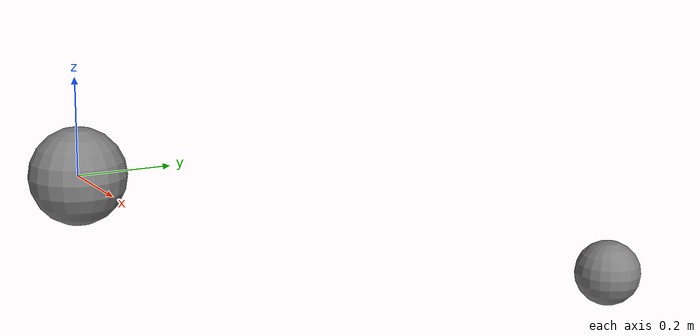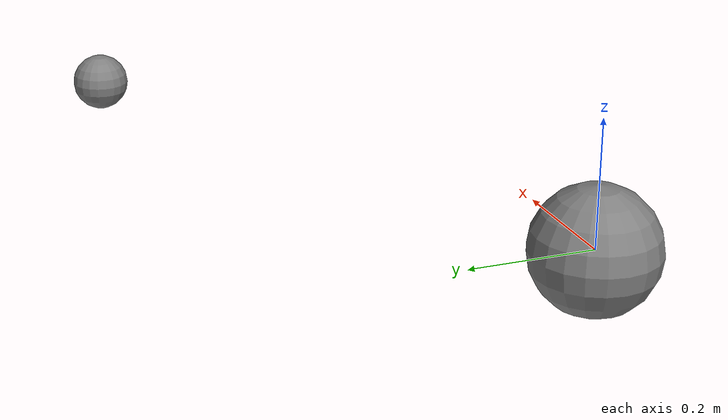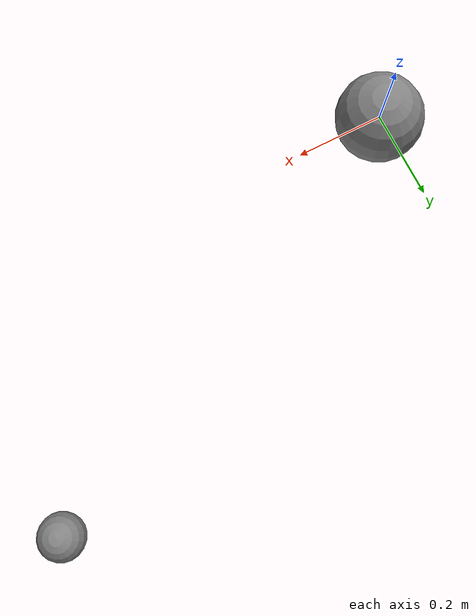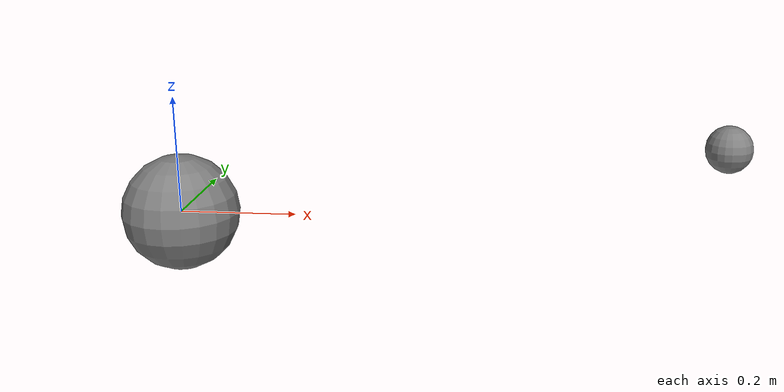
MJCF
<mujoco>
                <compiler fusestatic="true"/>
                <worldbody>
                    <body name="parent" pos="0 0 0">
                        <joint name="j1" type="hinge" axis="0 0 1"/>
                        <geom name="parent_geom" type="sphere" size="0.1" mass="1"/>
                        <body name="rotated_static" pos="1 0 0" euler="0 0 90">
                            <geom name="child_geom" type="sphere" size="0.05" pos="0.5 0 0" mass="0.5"/>
                        </body>
                    </body>
                </worldbody>
            </mujoco>
